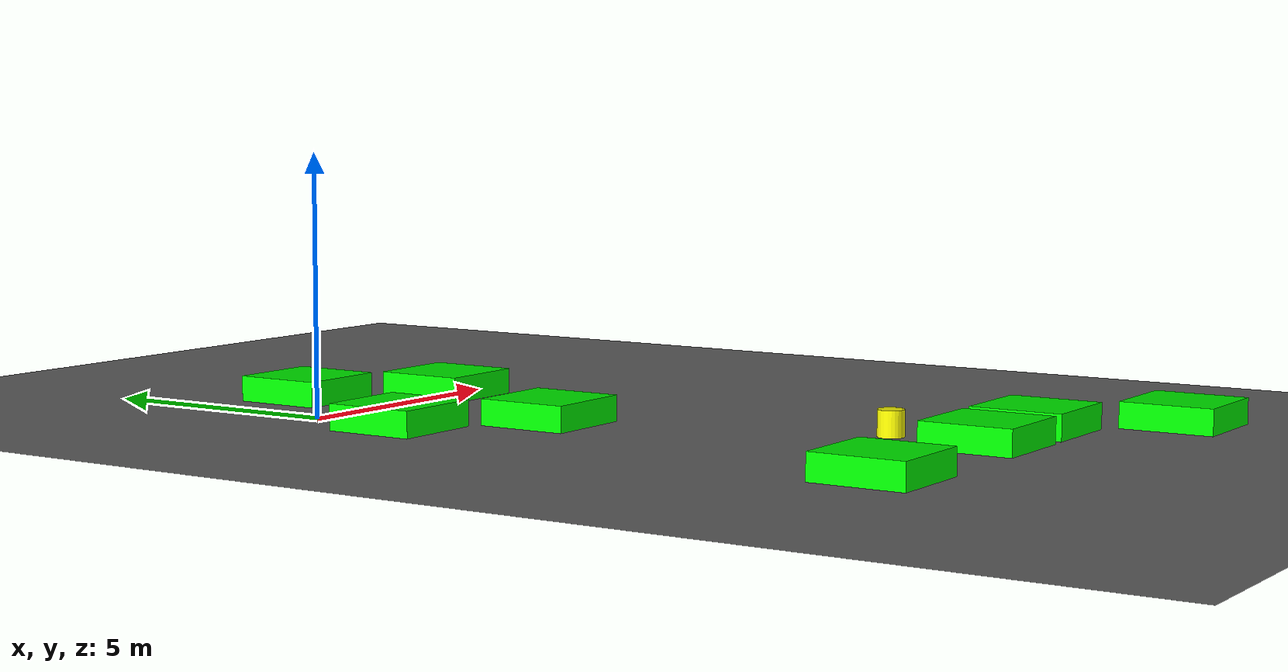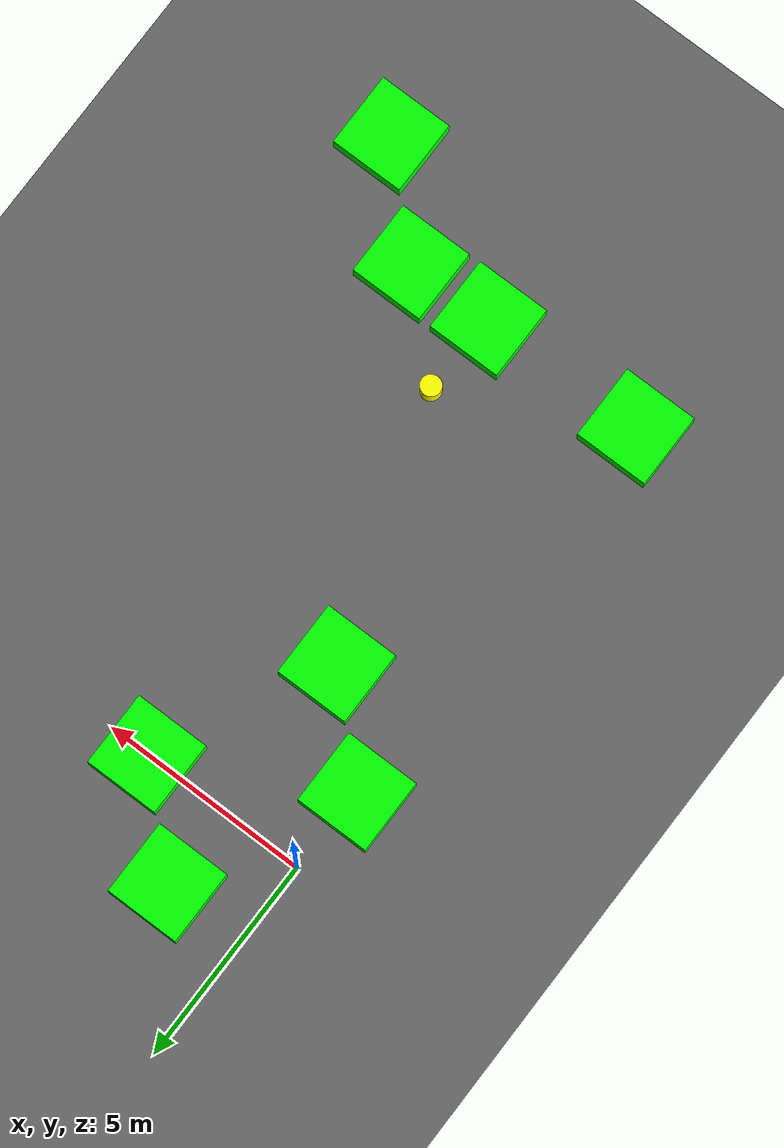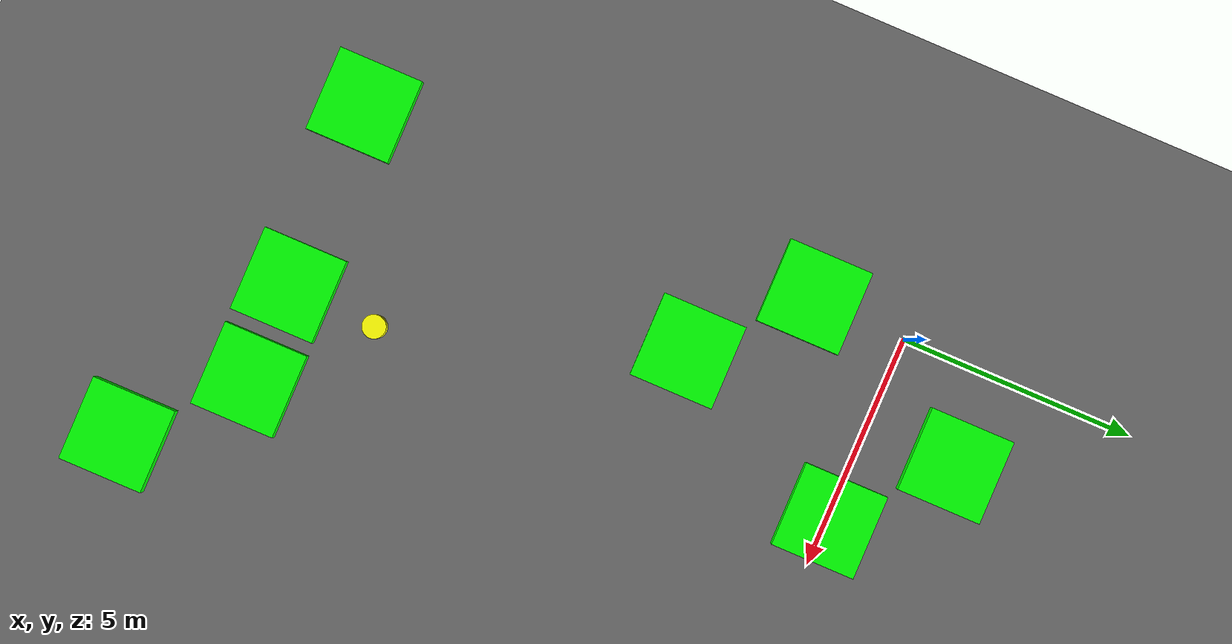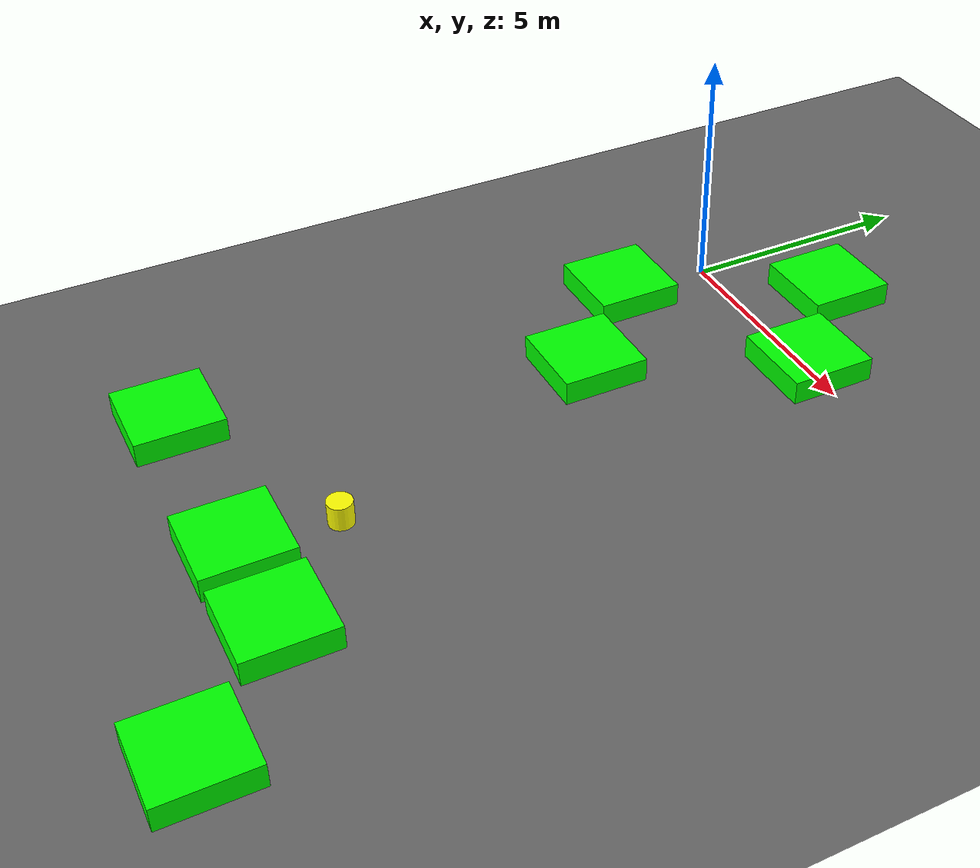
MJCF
<mujoco model="lvl4_standard_obs8_d2mid_seed38">
    <compiler angle="degree" coordinate="local" inertiafromgeom="true"/>
    <option integrator="RK4" timestep="0.01"/>

    <asset>
        <texture builtin="gradient" height="100" rgb1="0.6 0.8 1" rgb2="0 0 0" type="skybox" width="100"/>
        <texture name="floor_texture" type="2d" builtin="checker" width="100" height="100" rgb1="0 0 0" rgb2="0.8 0.8 0.8"/>
        <material name="MatPlane" reflectance="0.5" shininess="1" specular="1" texrepeat="10 10" texture="floor_texture"/>
    </asset>

    <!-- Excluding the contact between the agent and the goal, and the agent and the floor -->
    <contact>
        <exclude body1="agent" body2="goal"/>
        <exclude body1 = "agent" body2 = "floor"/>
    </contact>

    <extension>
        <plugin plugin = "mujoco.pid">
            <instance name = "pid1">
                <config key="kp" value="2"/>
                <config key="ki" value="0"/>
                <config key="kd" value="55"/>
            </instance>
        </plugin>
    </extension>

    <worldbody>
        <light cutoff="100" diffuse="1 1 1" dir="-0 0 -1.3" directional="true" exponent="1" pos="0 0 1.3" specular=".1 .1 .1"/>
        <body name="floor" pos="0 0 0">
            <geom name="floor_geom" type="plane" size="20 20 0.1" material="MatPlane"/>
        </body>

                <body name="goal" pos="0.0000 0.0000 0">
            <geom name="goal_geom" type="plane" size="0.5 0.5 1" pos="0 0 0" rgba="1 0 0 1"/>
        </body>

                <body name="agent" pos="4.0000 -10.0000 0.250">
            <joint name="j1" type="slide" axis ="1 0 0 "/>
            <joint name="j2" type="slide" axis ="0 1 0 "/>
            <geom name="agent_geom" type="cylinder" size="0.25 0.25 0.250" rgba="1 1 0 1"/>
        </body>

        <body name="obstacle1" pos="1.9575 1.9528 0.250">  <geom name="obstacle1_geom" type="box" size="0.9000 0.9000 0.250" rgba="0 1 0 1"/></body>
        <body name="obstacle2" pos="3.9867 0.0379 0.250">  <geom name="obstacle2_geom" type="box" size="0.9000 0.9000 0.250" rgba="0 1 0 1"/></body>
        <body name="obstacle3" pos="-0.0672 -2.0254 0.250">  <geom name="obstacle3_geom" type="box" size="0.9000 0.9000 0.250" rgba="0 1 0 1"/></body>
        <body name="obstacle4" pos="1.9478 -3.9543 0.250">  <geom name="obstacle4_geom" type="box" size="0.9000 0.9000 0.250" rgba="0 1 0 1"/></body>
        <body name="obstacle5" pos="-0.0504 -11.9521 0.250">  <geom name="obstacle5_geom" type="box" size="0.9000 0.9000 0.250" rgba="0 1 0 1"/></body>
        <body name="obstacle6" pos="3.9058 -11.9289 0.250">  <geom name="obstacle6_geom" type="box" size="0.9000 0.9000 0.250" rgba="0 1 0 1"/></body>
        <body name="obstacle7" pos="5.9855 -11.9132 0.250">  <geom name="obstacle7_geom" type="box" size="0.9000 0.9000 0.250" rgba="0 1 0 1"/></body>
        <body name="obstacle8" pos="8.0592 -13.9315 0.250">  <geom name="obstacle8_geom" type="box" size="0.9000 0.9000 0.250" rgba="0 1 0 1"/></body>

    </worldbody>

    <sensor>
<!-- SENSORS -->

        <distance name="dist1" geom1="agent_geom" geom2="obstacle1_geom" cutoff="1.5"/>
        <distance name="dist2" geom1="agent_geom" geom2="obstacle2_geom" cutoff="1.5"/>
        <distance name="dist3" geom1="agent_geom" geom2="obstacle3_geom" cutoff="1.5"/>
        <distance name="dist4" geom1="agent_geom" geom2="obstacle4_geom" cutoff="1.5"/>
        <distance name="dist5" geom1="agent_geom" geom2="obstacle5_geom" cutoff="1.5"/>
        <distance name="dist6" geom1="agent_geom" geom2="obstacle6_geom" cutoff="1.5"/>
        <distance name="dist7" geom1="agent_geom" geom2="obstacle7_geom" cutoff="1.5"/>
        <distance name="dist8" geom1="agent_geom" geom2="obstacle8_geom" cutoff="1.5"/>
</sensor>

    <actuator>
        <plugin joint="j1" plugin="mujoco.pid" instance="pid1" />
        <plugin joint="j2" plugin="mujoco.pid" instance="pid1"/>
    </actuator>
</mujoco>
